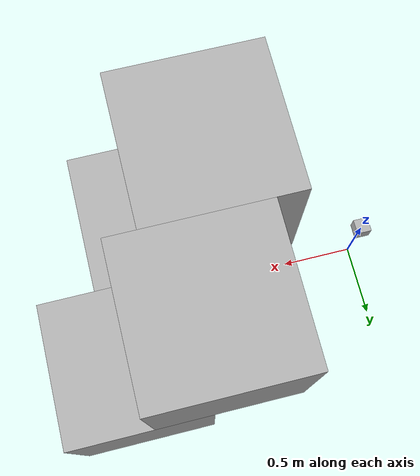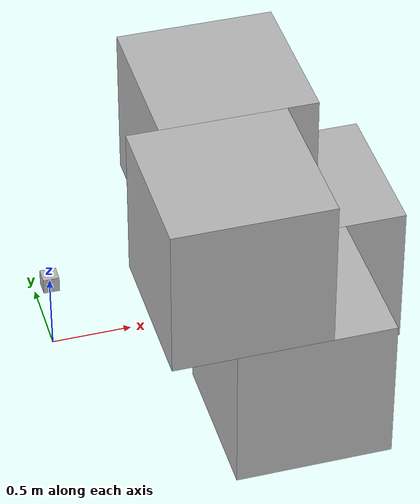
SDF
<?xml version="1.0" ?>
<sdf version="1.6">
  <world name="default">
    <include>
      <uri>model://sun</uri>
    </include>

    <model name="pointcloud_camera">
      <static>true</static>
      <pose>0.0 0.0 0.5 0 0 0</pose>
      <link name="link">
        <pose>0.0 0.0 0.0 0 0 0</pose>
        <inertial>
          <mass>0.1</mass>
        </inertial>
        <collision name="collision">
          <geometry>
            <box>
              <size>0.1 0.1 0.1</size>
            </box>
          </geometry>
        </collision>
        <visual name="visual">
          <geometry>
            <box>
              <size>0.1 0.1 0.1</size>
            </box>
          </geometry>
        </visual>
        <sensor name="pointcloud_camera_sensor" type="depth">
          <camera>
            <horizontal_fov>0.7854</horizontal_fov>
            <image>
              <width>320</width>
              <height>240</height>
            </image>
            <clip>
              <near>0.1</near>
              <far>100</far>
            </clip>
            <depth_camera>
              <output>points</output>
            </depth_camera>
          </camera>
          <always_on>1</always_on>
          <update_rate>10</update_rate>
          <visualize>false</visualize>
        </sensor>
      </link>
    </model>

    <model name="tr_box">
      <static>true</static>
      <pose>1.0 -0.5 1.0 0 0 0</pose>
      <link name="link">
        <collision name="collision">
          <geometry>
            <box>
              <size>1 1 1</size>
            </box>
          </geometry>
        </collision>
        <visual name="visual">
          <geometry>
            <box>
              <size>1 1 1</size>
            </box>
          </geometry>
        </visual>
      </link>
    </model>

    <model name="tl_box">
      <static>true</static>
      <pose>1.2 0.5 1.0 0 0 0</pose>
      <link name="link">
        <collision name="collision">
          <geometry>
            <box>
              <size>1 1 1</size>
            </box>
          </geometry>
        </collision>
        <visual name="visual">
          <geometry>
            <box>
              <size>1 1 1</size>
            </box>
          </geometry>
        </visual>
      </link>
    </model>

    <model name="br_box">
      <static>true</static>
      <pose>1.4 -0.5 0.0 0 0 0</pose>
      <link name="link">
        <collision name="collision">
          <geometry>
            <box>
              <size>1 1 1</size>
            </box>
          </geometry>
        </collision>
        <visual name="visual">
          <geometry>
            <box>
              <size>1 1 1</size>
            </box>
          </geometry>
        </visual>
      </link>
    </model>

    <model name="bl_box">
      <static>true</static>
      <pose>1.8 0.5 0.0 0 0 0</pose>
      <link name="link">
        <collision name="collision">
          <geometry>
            <box>
              <size>1 1 1</size>
            </box>
          </geometry>
        </collision>
        <visual name="visual">
          <geometry>
            <box>
              <size>1 1 1</size>
            </box>
          </geometry>
        </visual>
      </link>
    </model>

  </world>
</sdf>
